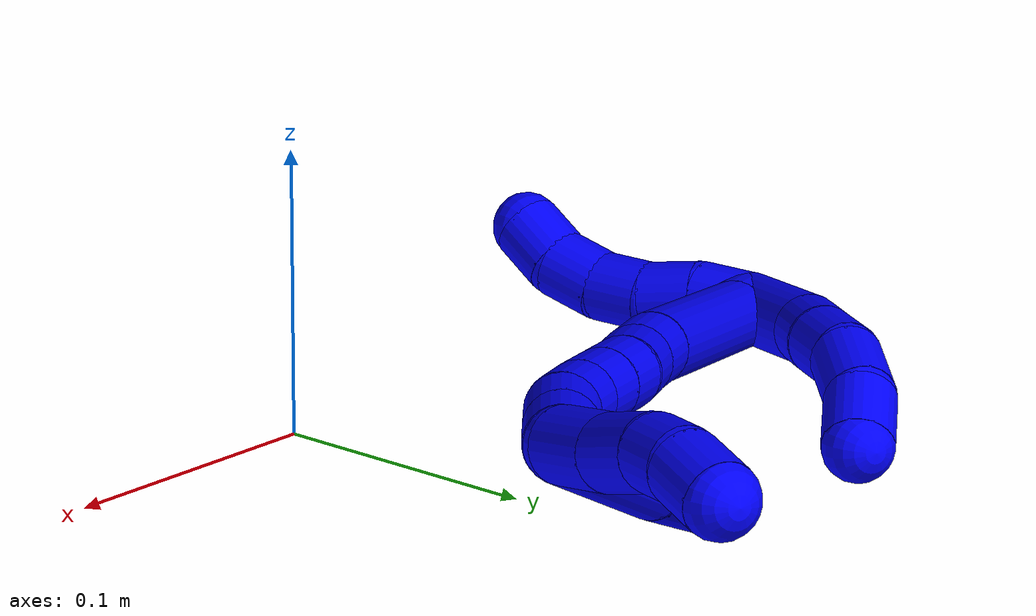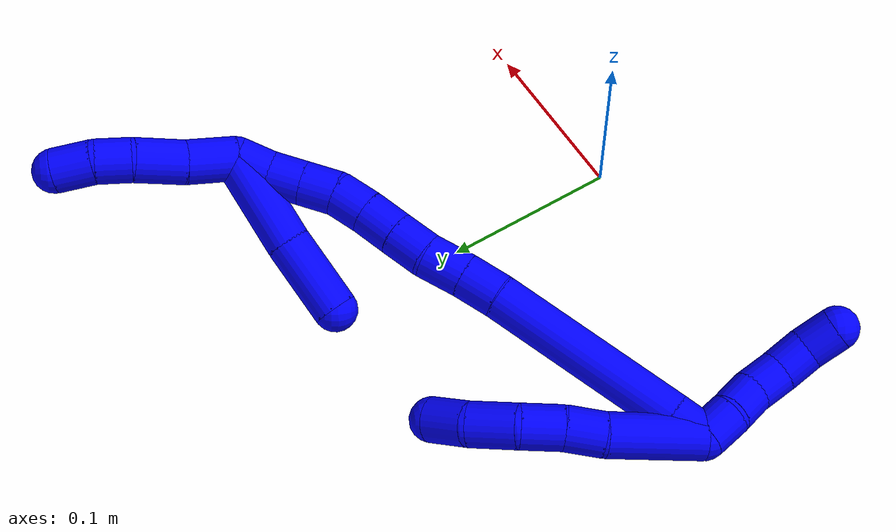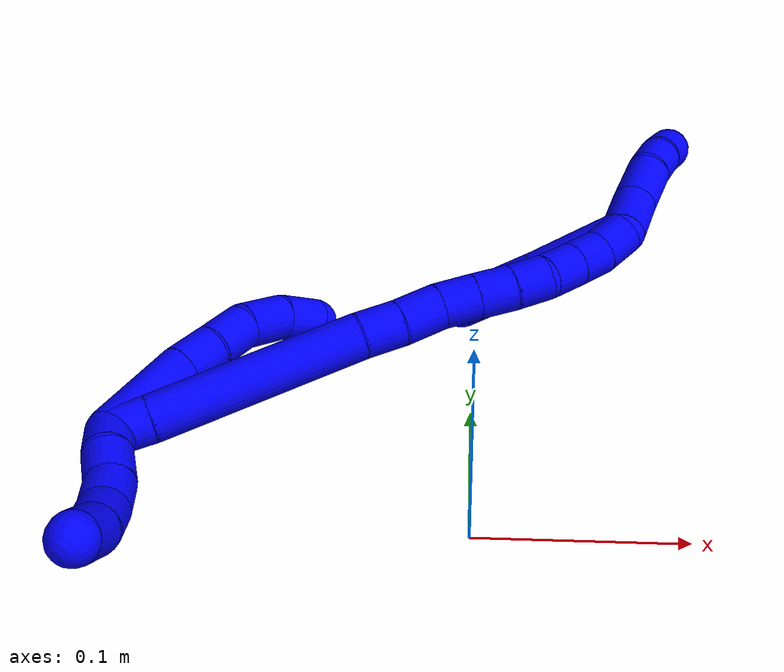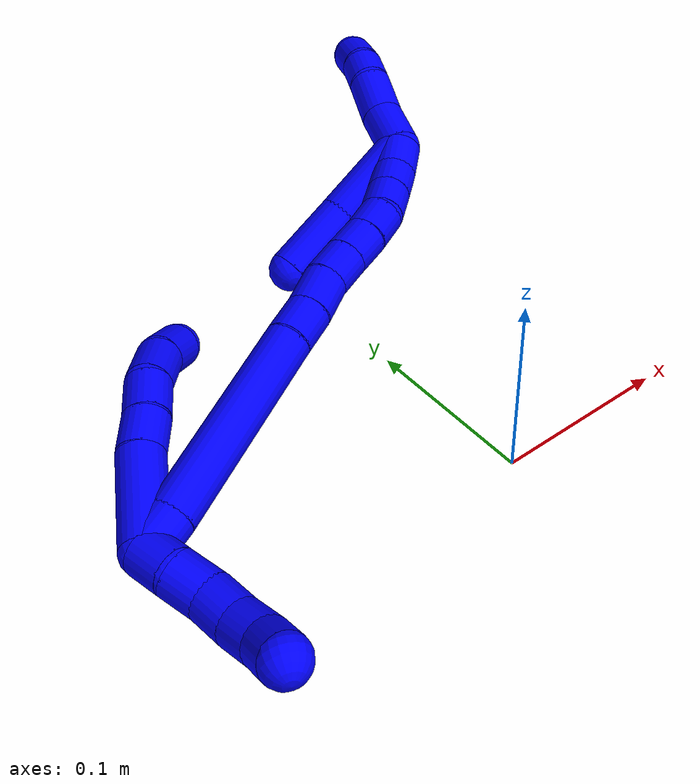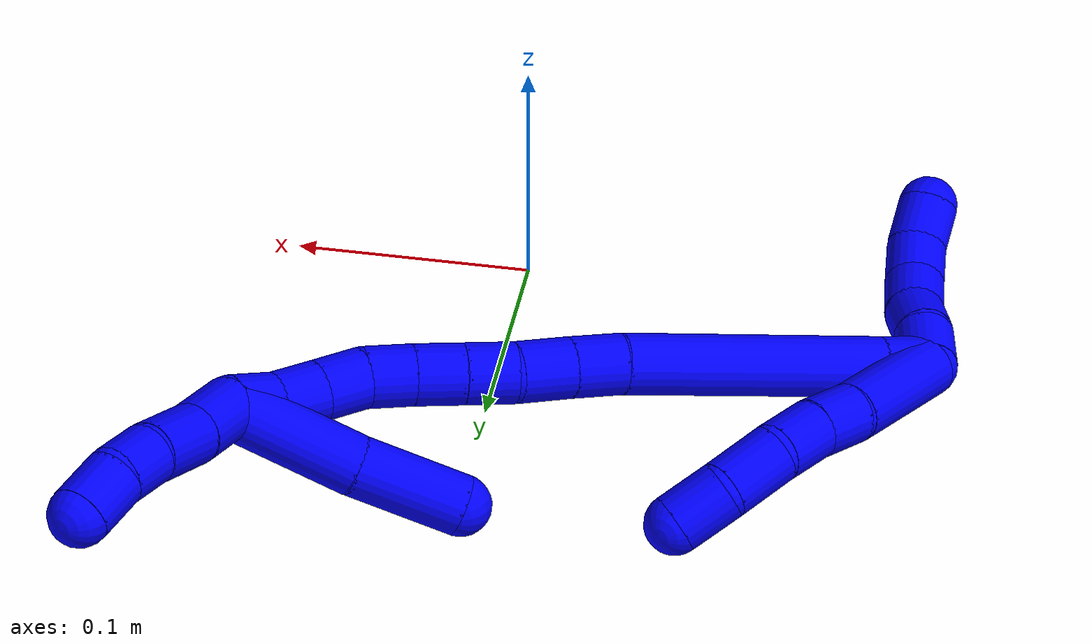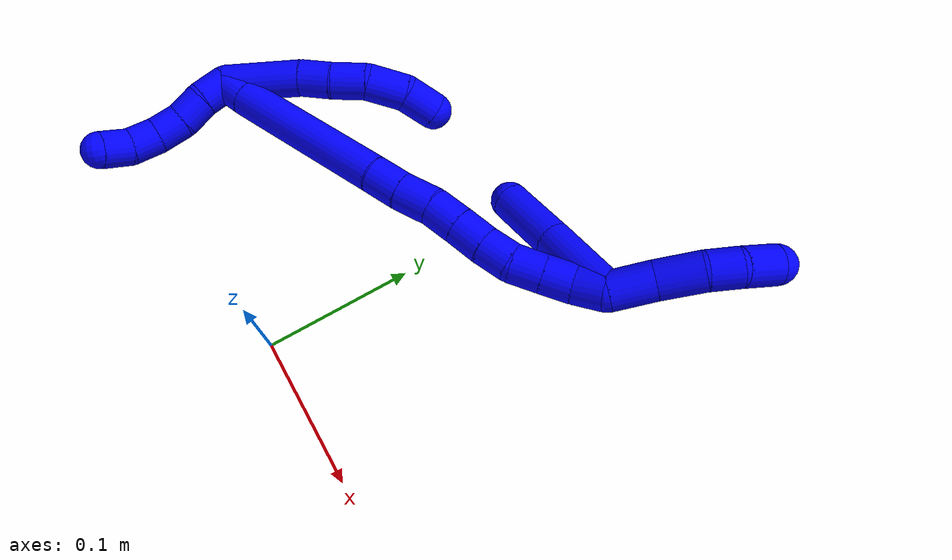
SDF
<sdf version="1.7">
 <world name="default">
  <model name="1">
   <static>0</static>
   <link name="1">
    <collision name="collision-cylinder-e_1_2_8">
     <pose>0.003148 0.001425 0.02672 -0.053294 0.117125 -0.003125</pose>
     <geometry><cylinder><radius>0.0125</radius><length>0.053885</length></cylinder></geometry>
     <surface>
      <friction><ode><mu>1.16</mu><mu2>1.16</mu2><slip1>0</slip1><slip2>0</slip2></ode></friction>
      <contact><ode><kp>1e+06</kp><kd>1</kd><max_vel>0</max_vel><min_depth>0.001</min_depth></ode></contact>
     </surface>
    </collision>
    <visual name="visual-cylinder-e_1_2_8">
     <pose>0.003148 0.001425 0.02672 -0.053294 0.117125 -0.003125</pose>
     <geometry><cylinder><radius>0.0125</radius><length>0.053885</length></cylinder></geometry>
     <material><ambient>0 0 1 1</ambient></material>
    </visual>
    <collision name="collision-cylinder-e_2_8_9">
     <pose>0.008727 0.004811 0.063961 -0.184227 0.223293 -0.020712</pose>
     <geometry><cylinder><radius>0.0125</radius><length>0.02195</length></cylinder></geometry>
     <surface>
      <friction><ode><mu>1.16</mu><mu2>1.16</mu2><slip1>0</slip1><slip2>0</slip2></ode></friction>
      <contact><ode><kp>1e+06</kp><kd>1</kd><max_vel>0</max_vel><min_depth>0.001</min_depth></ode></contact>
     </surface>
    </collision>
    <visual name="visual-cylinder-e_2_8_9">
     <pose>0.008727 0.004811 0.063961 -0.184227 0.223293 -0.020712</pose>
     <geometry><cylinder><radius>0.0125</radius><length>0.02195</length></cylinder></geometry>
     <material><ambient>0 0 1 1</ambient></material>
    </visual>
    <collision name="collision-cylinder-e_3_9_10">
     <pose>0.012284 0.00864 0.086108 -0.159356 0.095377 -0.007621</pose>
     <geometry><cylinder><radius>0.0125</radius><length>0.023657</length></cylinder></geometry>
     <surface>
      <friction><ode><mu>1.16</mu><mu2>1.16</mu2><slip1>0</slip1><slip2>0</slip2></ode></friction>
      <contact><ode><kp>1e+06</kp><kd>1</kd><max_vel>0</max_vel><min_depth>0.001</min_depth></ode></contact>
     </surface>
    </collision>
    <visual name="visual-cylinder-e_3_9_10">
     <pose>0.012284 0.00864 0.086108 -0.159356 0.095377 -0.007621</pose>
     <geometry><cylinder><radius>0.0125</radius><length>0.023657</length></cylinder></geometry>
     <material><ambient>0 0 1 1</ambient></material>
    </visual>
    <collision name="collision-cylinder-e_4_10_11">
     <pose>0.013537 0.016376 0.109936 -0.448162 0.009321 -0.002124</pose>
     <geometry><cylinder><radius>0.0125</radius><length>0.027081</length></cylinder></geometry>
     <surface>
      <friction><ode><mu>1.16</mu><mu2>1.16</mu2><slip1>0</slip1><slip2>0</slip2></ode></friction>
      <contact><ode><kp>1e+06</kp><kd>1</kd><max_vel>0</max_vel><min_depth>0.001</min_depth></ode></contact>
     </surface>
    </collision>
    <visual name="visual-cylinder-e_4_10_11">
     <pose>0.013537 0.016376 0.109936 -0.448162 0.009321 -0.002124</pose>
     <geometry><cylinder><radius>0.0125</radius><length>0.027081</length></cylinder></geometry>
     <material><ambient>0 0 1 1</ambient></material>
    </visual>
    <collision name="collision-cylinder-e_5_11_6">
     <pose>0.013499 0.030208 0.130725 -0.747908 -0.01397 0.005482</pose>
     <geometry><cylinder><radius>0.0125</radius><length>0.023428</length></cylinder></geometry>
     <surface>
      <friction><ode><mu>1.16</mu><mu2>1.16</mu2><slip1>0</slip1><slip2>0</slip2></ode></friction>
      <contact><ode><kp>1e+06</kp><kd>1</kd><max_vel>0</max_vel><min_depth>0.001</min_depth></ode></contact>
     </surface>
    </collision>
    <visual name="visual-cylinder-e_5_11_6">
     <pose>0.013499 0.030208 0.130725 -0.747908 -0.01397 0.005482</pose>
     <geometry><cylinder><radius>0.0125</radius><length>0.023428</length></cylinder></geometry>
     <material><ambient>0 0 1 1</ambient></material>
    </visual>
    <collision name="collision-cylinder-e_1_2_12">
     <pose>0.004757 0.002986 -0.008274 -2.79527 0.495711 -1.93201</pose>
     <geometry><cylinder><radius>0.0125</radius><length>0.02</length></cylinder></geometry>
     <surface>
      <friction><ode><mu>1.16</mu><mu2>1.16</mu2><slip1>0</slip1><slip2>0</slip2></ode></friction>
      <contact><ode><kp>1e+06</kp><kd>1</kd><max_vel>0</max_vel><min_depth>0.001</min_depth></ode></contact>
     </surface>
    </collision>
    <visual name="visual-cylinder-e_1_2_12">
     <pose>0.004757 0.002986 -0.008274 -2.79527 0.495711 -1.93201</pose>
     <geometry><cylinder><radius>0.0125</radius><length>0.02</length></cylinder></geometry>
     <material><ambient>0 0 1 1</ambient></material>
    </visual>
    <collision name="collision-cylinder-e_2_12_13">
     <pose>0.013411 0.010978 -0.024278 -2.56686 0.400429 -1.2034</pose>
     <geometry><cylinder><radius>0.0125</radius><length>0.02</length></cylinder></geometry>
     <surface>
      <friction><ode><mu>1.16</mu><mu2>1.16</mu2><slip1>0</slip1><slip2>0</slip2></ode></friction>
      <contact><ode><kp>1e+06</kp><kd>1</kd><max_vel>0</max_vel><min_depth>0.001</min_depth></ode></contact>
     </surface>
    </collision>
    <visual name="visual-cylinder-e_2_12_13">
     <pose>0.013411 0.010978 -0.024278 -2.56686 0.400429 -1.2034</pose>
     <geometry><cylinder><radius>0.0125</radius><length>0.02</length></cylinder></geometry>
     <material><ambient>0 0 1 1</ambient></material>
    </visual>
    <collision name="collision-cylinder-e_3_13_14">
     <pose>0.021385 0.018648 -0.040742 -2.84553 0.419729 -1.92</pose>
     <geometry><cylinder><radius>0.0125</radius><length>0.02</length></cylinder></geometry>
     <surface>
      <friction><ode><mu>1.16</mu><mu2>1.16</mu2><slip1>0</slip1><slip2>0</slip2></ode></friction>
      <contact><ode><kp>1e+06</kp><kd>1</kd><max_vel>0</max_vel><min_depth>0.001</min_depth></ode></contact>
     </surface>
    </collision>
    <visual name="visual-cylinder-e_3_13_14">
     <pose>0.021385 0.018648 -0.040742 -2.84553 0.419729 -1.92</pose>
     <geometry><cylinder><radius>0.0125</radius><length>0.02</length></cylinder></geometry>
     <material><ambient>0 0 1 1</ambient></material>
    </visual>
    <collision name="collision-cylinder-e_4_14_15">
     <pose>0.030934 0.022051 -0.057812 -3.05321 0.579337 -2.84702</pose>
     <geometry><cylinder><radius>0.0125</radius><length>0.02</length></cylinder></geometry>
     <surface>
      <friction><ode><mu>1.16</mu><mu2>1.16</mu2><slip1>0</slip1><slip2>0</slip2></ode></friction>
      <contact><ode><kp>1e+06</kp><kd>1</kd><max_vel>0</max_vel><min_depth>0.001</min_depth></ode></contact>
     </surface>
    </collision>
    <visual name="visual-cylinder-e_4_14_15">
     <pose>0.030934 0.022051 -0.057812 -3.05321 0.579337 -2.84702</pose>
     <geometry><cylinder><radius>0.0125</radius><length>0.02</length></cylinder></geometry>
     <material><ambient>0 0 1 1</ambient></material>
    </visual>
    <collision name="collision-cylinder-e_5_15_5">
     <pose>0.041958 0.020414 -0.07412 2.85195 0.588202 2.24408</pose>
     <geometry><cylinder><radius>0.0125</radius><length>0.02</length></cylinder></geometry>
     <surface>
      <friction><ode><mu>1.16</mu><mu2>1.16</mu2><slip1>0</slip1><slip2>0</slip2></ode></friction>
      <contact><ode><kp>1e+06</kp><kd>1</kd><max_vel>0</max_vel><min_depth>0.001</min_depth></ode></contact>
     </surface>
    </collision>
    <visual name="visual-cylinder-e_5_15_5">
     <pose>0.041958 0.020414 -0.07412 2.85195 0.588202 2.24408</pose>
     <geometry><cylinder><radius>0.0125</radius><length>0.02</length></cylinder></geometry>
     <material><ambient>0 0 1 1</ambient></material>
    </visual>
    <collision name="collision-cylinder-e_1_2_16">
     <pose>0.005508 0.004657 0.007107 -0.580066 0.575171 -0.176097</pose>
     <geometry><cylinder><radius>0.0125</radius><length>0.020252</length></cylinder></geometry>
     <surface>
      <friction><ode><mu>1.16</mu><mu2>1.16</mu2><slip1>0</slip1><slip2>0</slip2></ode></friction>
      <contact><ode><kp>1e+06</kp><kd>1</kd><max_vel>0</max_vel><min_depth>0.001</min_depth></ode></contact>
     </surface>
    </collision>
    <visual name="visual-cylinder-e_1_2_16">
     <pose>0.005508 0.004657 0.007107 -0.580066 0.575171 -0.176097</pose>
     <geometry><cylinder><radius>0.0125</radius><length>0.020252</length></cylinder></geometry>
     <material><ambient>0 0 1 1</ambient></material>
    </visual>
    <collision name="collision-cylinder-e_2_16_17">
     <pose>0.042328 0.031415 0.055324 -0.493284 0.590882 -0.152951</pose>
     <geometry><cylinder><radius>0.0125</radius><length>0.112407</length></cylinder></geometry>
     <surface>
      <friction><ode><mu>1.16</mu><mu2>1.16</mu2><slip1>0</slip1><slip2>0</slip2></ode></friction>
      <contact><ode><kp>1e+06</kp><kd>1</kd><max_vel>0</max_vel><min_depth>0.001</min_depth></ode></contact>
     </surface>
    </collision>
    <visual name="visual-cylinder-e_2_16_17">
     <pose>0.042328 0.031415 0.055324 -0.493284 0.590882 -0.152951</pose>
     <geometry><cylinder><radius>0.0125</radius><length>0.112407</length></cylinder></geometry>
     <material><ambient>0 0 1 1</ambient></material>
    </visual>
    <collision name="collision-cylinder-e_3_17_18">
     <pose>0.079104 0.058514 0.104692 -0.544284 0.515265 -0.146797</pose>
     <geometry><cylinder><radius>0.0125</radius><length>0.022185</length></cylinder></geometry>
     <surface>
      <friction><ode><mu>1.16</mu><mu2>1.16</mu2><slip1>0</slip1><slip2>0</slip2></ode></friction>
      <contact><ode><kp>1e+06</kp><kd>1</kd><max_vel>0</max_vel><min_depth>0.001</min_depth></ode></contact>
     </surface>
    </collision>
    <visual name="visual-cylinder-e_3_17_18">
     <pose>0.079104 0.058514 0.104692 -0.544284 0.515265 -0.146797</pose>
     <geometry><cylinder><radius>0.0125</radius><length>0.022185</length></cylinder></geometry>
     <material><ambient>0 0 1 1</ambient></material>
    </visual>
    <collision name="collision-cylinder-e_4_18_19">
     <pose>0.090094 0.06796 0.122376 -0.440804 0.487283 -0.11127</pose>
     <geometry><cylinder><radius>0.0125</radius><length>0.023593</length></cylinder></geometry>
     <surface>
      <friction><ode><mu>1.16</mu><mu2>1.16</mu2><slip1>0</slip1><slip2>0</slip2></ode></friction>
      <contact><ode><kp>1e+06</kp><kd>1</kd><max_vel>0</max_vel><min_depth>0.001</min_depth></ode></contact>
     </surface>
    </collision>
    <visual name="visual-cylinder-e_4_18_19">
     <pose>0.090094 0.06796 0.122376 -0.440804 0.487283 -0.11127</pose>
     <geometry><cylinder><radius>0.0125</radius><length>0.023593</length></cylinder></geometry>
     <material><ambient>0 0 1 1</ambient></material>
    </visual>
    <collision name="collision-cylinder-e_5_19_20">
     <pose>0.101216 0.077549 0.138971 -0.622301 0.565561 -0.18635</pose>
     <geometry><cylinder><radius>0.0125</radius><length>0.020896</length></cylinder></geometry>
     <surface>
      <friction><ode><mu>1.16</mu><mu2>1.16</mu2><slip1>0</slip1><slip2>0</slip2></ode></friction>
      <contact><ode><kp>1e+06</kp><kd>1</kd><max_vel>0</max_vel><min_depth>0.001</min_depth></ode></contact>
     </surface>
    </collision>
    <visual name="visual-cylinder-e_5_19_20">
     <pose>0.101216 0.077549 0.138971 -0.622301 0.565561 -0.18635</pose>
     <geometry><cylinder><radius>0.0125</radius><length>0.020896</length></cylinder></geometry>
     <material><ambient>0 0 1 1</ambient></material>
    </visual>
    <collision name="collision-cylinder-e_6_20_21">
     <pose>0.112361 0.087942 0.15306 -0.648966 0.568154 -0.195796</pose>
     <geometry><cylinder><radius>0.0125</radius><length>0.020615</length></cylinder></geometry>
     <surface>
      <friction><ode><mu>1.16</mu><mu2>1.16</mu2><slip1>0</slip1><slip2>0</slip2></ode></friction>
      <contact><ode><kp>1e+06</kp><kd>1</kd><max_vel>0</max_vel><min_depth>0.001</min_depth></ode></contact>
     </surface>
    </collision>
    <visual name="visual-cylinder-e_6_20_21">
     <pose>0.112361 0.087942 0.15306 -0.648966 0.568154 -0.195796</pose>
     <geometry><cylinder><radius>0.0125</radius><length>0.020615</length></cylinder></geometry>
     <material><ambient>0 0 1 1</ambient></material>
    </visual>
    <collision name="collision-cylinder-e_7_21_22">
     <pose>0.122988 0.097805 0.167261 -0.564866 0.53268 -0.158011</pose>
     <geometry><cylinder><radius>0.0125</radius><length>0.020006</length></cylinder></geometry>
     <surface>
      <friction><ode><mu>1.16</mu><mu2>1.16</mu2><slip1>0</slip1><slip2>0</slip2></ode></friction>
      <contact><ode><kp>1e+06</kp><kd>1</kd><max_vel>0</max_vel><min_depth>0.001</min_depth></ode></contact>
     </surface>
    </collision>
    <visual name="visual-cylinder-e_7_21_22">
     <pose>0.122988 0.097805 0.167261 -0.564866 0.53268 -0.158011</pose>
     <geometry><cylinder><radius>0.0125</radius><length>0.020006</length></cylinder></geometry>
     <material><ambient>0 0 1 1</ambient></material>
    </visual>
    <collision name="collision-cylinder-e_8_22_23">
     <pose>0.131054 0.106016 0.183383 -0.386374 0.303125 -0.05974</pose>
     <geometry><cylinder><radius>0.0125</radius><length>0.020006</length></cylinder></geometry>
     <surface>
      <friction><ode><mu>1.16</mu><mu2>1.16</mu2><slip1>0</slip1><slip2>0</slip2></ode></friction>
      <contact><ode><kp>1e+06</kp><kd>1</kd><max_vel>0</max_vel><min_depth>0.001</min_depth></ode></contact>
     </surface>
    </collision>
    <visual name="visual-cylinder-e_8_22_23">
     <pose>0.131054 0.106016 0.183383 -0.386374 0.303125 -0.05974</pose>
     <geometry><cylinder><radius>0.0125</radius><length>0.020006</length></cylinder></geometry>
     <material><ambient>0 0 1 1</ambient></material>
    </visual>
    <collision name="collision-cylinder-e_9_23_24">
     <pose>0.137072 0.113048 0.20112 -0.368548 0.307921 -0.057835</pose>
     <geometry><cylinder><radius>0.0125</radius><length>0.020009</length></cylinder></geometry>
     <surface>
      <friction><ode><mu>1.16</mu><mu2>1.16</mu2><slip1>0</slip1><slip2>0</slip2></ode></friction>
      <contact><ode><kp>1e+06</kp><kd>1</kd><max_vel>0</max_vel><min_depth>0.001</min_depth></ode></contact>
     </surface>
    </collision>
    <visual name="visual-cylinder-e_9_23_24">
     <pose>0.137072 0.113048 0.20112 -0.368548 0.307921 -0.057835</pose>
     <geometry><cylinder><radius>0.0125</radius><length>0.020009</length></cylinder></geometry>
     <material><ambient>0 0 1 1</ambient></material>
    </visual>
    <collision name="collision-cylinder-e_10_24_1">
     <pose>0.14466 0.117897 0.218819 -0.159234 0.47225 -0.03839</pose>
     <geometry><cylinder><radius>0.0125</radius><length>0.020029</length></cylinder></geometry>
     <surface>
      <friction><ode><mu>1.16</mu><mu2>1.16</mu2><slip1>0</slip1><slip2>0</slip2></ode></friction>
      <contact><ode><kp>1e+06</kp><kd>1</kd><max_vel>0</max_vel><min_depth>0.001</min_depth></ode></contact>
     </surface>
    </collision>
    <visual name="visual-cylinder-e_10_24_1">
     <pose>0.14466 0.117897 0.218819 -0.159234 0.47225 -0.03839</pose>
     <geometry><cylinder><radius>0.0125</radius><length>0.020029</length></cylinder></geometry>
     <material><ambient>0 0 1 1</ambient></material>
    </visual>
    <collision name="collision-cylinder-e_1_1_25">
     <pose>0.125849 0.111799 0.215485 2.58748 -1.02235 -2.20316</pose>
     <geometry><cylinder><radius>0.0125</radius><length>0.054765</length></cylinder></geometry>
     <surface>
      <friction><ode><mu>1.16</mu><mu2>1.16</mu2><slip1>0</slip1><slip2>0</slip2></ode></friction>
      <contact><ode><kp>1e+06</kp><kd>1</kd><max_vel>0</max_vel><min_depth>0.001</min_depth></ode></contact>
     </surface>
    </collision>
    <visual name="visual-cylinder-e_1_1_25">
     <pose>0.125849 0.111799 0.215485 2.58748 -1.02235 -2.20316</pose>
     <geometry><cylinder><radius>0.0125</radius><length>0.054765</length></cylinder></geometry>
     <material><ambient>0 0 1 1</ambient></material>
    </visual>
    <collision name="collision-cylinder-e_2_25_4">
     <pose>0.084132 0.09704 0.192286 2.56149 -0.94643 -2.08606</pose>
     <geometry><cylinder><radius>0.0125</radius><length>0.045235</length></cylinder></geometry>
     <surface>
      <friction><ode><mu>1.16</mu><mu2>1.16</mu2><slip1>0</slip1><slip2>0</slip2></ode></friction>
      <contact><ode><kp>1e+06</kp><kd>1</kd><max_vel>0</max_vel><min_depth>0.001</min_depth></ode></contact>
     </surface>
    </collision>
    <visual name="visual-cylinder-e_2_25_4">
     <pose>0.084132 0.09704 0.192286 2.56149 -0.94643 -2.08606</pose>
     <geometry><cylinder><radius>0.0125</radius><length>0.045235</length></cylinder></geometry>
     <material><ambient>0 0 1 1</ambient></material>
    </visual>
    <collision name="collision-cylinder-e_1_1_26">
     <pose>0.149543 0.117586 0.241758 0.121471 0.023037 0.001401</pose>
     <geometry><cylinder><radius>0.0125</radius><length>0.028484</length></cylinder></geometry>
     <surface>
      <friction><ode><mu>1.16</mu><mu2>1.16</mu2><slip1>0</slip1><slip2>0</slip2></ode></friction>
      <contact><ode><kp>1e+06</kp><kd>1</kd><max_vel>0</max_vel><min_depth>0.001</min_depth></ode></contact>
     </surface>
    </collision>
    <visual name="visual-cylinder-e_1_1_26">
     <pose>0.149543 0.117586 0.241758 0.121471 0.023037 0.001401</pose>
     <geometry><cylinder><radius>0.0125</radius><length>0.028484</length></cylinder></geometry>
     <material><ambient>0 0 1 1</ambient></material>
    </visual>
    <collision name="collision-cylinder-e_2_26_27">
     <pose>0.151985 0.113769 0.270142 0.145736 0.14571 0.010655</pose>
     <geometry><cylinder><radius>0.0125</radius><length>0.029116</length></cylinder></geometry>
     <surface>
      <friction><ode><mu>1.16</mu><mu2>1.16</mu2><slip1>0</slip1><slip2>0</slip2></ode></friction>
      <contact><ode><kp>1e+06</kp><kd>1</kd><max_vel>0</max_vel><min_depth>0.001</min_depth></ode></contact>
     </surface>
    </collision>
    <visual name="visual-cylinder-e_2_26_27">
     <pose>0.151985 0.113769 0.270142 0.145736 0.14571 0.010655</pose>
     <geometry><cylinder><radius>0.0125</radius><length>0.029116</length></cylinder></geometry>
     <material><ambient>0 0 1 1</ambient></material>
    </visual>
    <collision name="collision-cylinder-e_3_27_28">
     <pose>0.154355 0.111989 0.294437 -0.031012 0.025522 -0.000396</pose>
     <geometry><cylinder><radius>0.0125</radius><length>0.020105</length></cylinder></geometry>
     <surface>
      <friction><ode><mu>1.16</mu><mu2>1.16</mu2><slip1>0</slip1><slip2>0</slip2></ode></friction>
      <contact><ode><kp>1e+06</kp><kd>1</kd><max_vel>0</max_vel><min_depth>0.001</min_depth></ode></contact>
     </surface>
    </collision>
    <visual name="visual-cylinder-e_3_27_28">
     <pose>0.154355 0.111989 0.294437 -0.031012 0.025522 -0.000396</pose>
     <geometry><cylinder><radius>0.0125</radius><length>0.020105</length></cylinder></geometry>
     <material><ambient>0 0 1 1</ambient></material>
    </visual>
    <collision name="collision-cylinder-e_4_28_3">
     <pose>0.152674 0.114268 0.315282 -0.180234 -0.174676 0.015824</pose>
     <geometry><cylinder><radius>0.0125</radius><length>0.022295</length></cylinder></geometry>
     <surface>
      <friction><ode><mu>1.16</mu><mu2>1.16</mu2><slip1>0</slip1><slip2>0</slip2></ode></friction>
      <contact><ode><kp>1e+06</kp><kd>1</kd><max_vel>0</max_vel><min_depth>0.001</min_depth></ode></contact>
     </surface>
    </collision>
    <visual name="visual-cylinder-e_4_28_3">
     <pose>0.152674 0.114268 0.315282 -0.180234 -0.174676 0.015824</pose>
     <geometry><cylinder><radius>0.0125</radius><length>0.022295</length></cylinder></geometry>
     <material><ambient>0 0 1 1</ambient></material>
    </visual>
    <collision name="collision-sphere-3">
     <pose>0.150737 0.116236 0.326083 0 -0 0</pose>
     <geometry><sphere><radius>0.0125</radius></sphere></geometry>
     <surface>
      <friction><ode><mu>1.16</mu><mu2>1.16</mu2><slip1>0</slip1><slip2>0</slip2></ode></friction>
      <contact><ode><kp>1e+06</kp><kd>1</kd><max_vel>0</max_vel><min_depth>0.001</min_depth></ode></contact>
     </surface>
    </collision>
    <visual name="visual-sphere-3">
     <pose>0.150737 0.116236 0.326083 0 -0 0</pose>
     <geometry><sphere><radius>0.0125</radius></sphere></geometry>
     <material><ambient>0 0 1 1</ambient></material>
    </visual>
    <collision name="collision-sphere-28">
     <pose>0.154612 0.112301 0.304482 0 -0 0</pose>
     <geometry><sphere><radius>0.0125</radius></sphere></geometry>
     <surface>
      <friction><ode><mu>1.16</mu><mu2>1.16</mu2><slip1>0</slip1><slip2>0</slip2></ode></friction>
      <contact><ode><kp>1e+06</kp><kd>1</kd><max_vel>0</max_vel><min_depth>0.001</min_depth></ode></contact>
     </surface>
    </collision>
    <visual name="visual-sphere-28">
     <pose>0.154612 0.112301 0.304482 0 -0 0</pose>
     <geometry><sphere><radius>0.0125</radius></sphere></geometry>
     <material><ambient>0 0 1 1</ambient></material>
    </visual>
    <collision name="collision-sphere-27">
     <pose>0.154099 0.111677 0.284393 0 -0 0</pose>
     <geometry><sphere><radius>0.0125</radius></sphere></geometry>
     <surface>
      <friction><ode><mu>1.16</mu><mu2>1.16</mu2><slip1>0</slip1><slip2>0</slip2></ode></friction>
      <contact><ode><kp>1e+06</kp><kd>1</kd><max_vel>0</max_vel><min_depth>0.001</min_depth></ode></contact>
     </surface>
    </collision>
    <visual name="visual-sphere-27">
     <pose>0.154099 0.111677 0.284393 0 -0 0</pose>
     <geometry><sphere><radius>0.0125</radius></sphere></geometry>
     <material><ambient>0 0 1 1</ambient></material>
    </visual>
    <collision name="collision-sphere-26">
     <pose>0.149871 0.115861 0.255891 0 -0 0</pose>
     <geometry><sphere><radius>0.0125</radius></sphere></geometry>
     <surface>
      <friction><ode><mu>1.16</mu><mu2>1.16</mu2><slip1>0</slip1><slip2>0</slip2></ode></friction>
      <contact><ode><kp>1e+06</kp><kd>1</kd><max_vel>0</max_vel><min_depth>0.001</min_depth></ode></contact>
     </surface>
    </collision>
    <visual name="visual-sphere-26">
     <pose>0.149871 0.115861 0.255891 0 -0 0</pose>
     <geometry><sphere><radius>0.0125</radius></sphere></geometry>
     <material><ambient>0 0 1 1</ambient></material>
    </visual>
    <collision name="collision-sphere-4">
     <pose>0.065782 0.089793 0.181227 0 -0 0</pose>
     <geometry><sphere><radius>0.0125</radius></sphere></geometry>
     <surface>
      <friction><ode><mu>1.16</mu><mu2>1.16</mu2><slip1>0</slip1><slip2>0</slip2></ode></friction>
      <contact><ode><kp>1e+06</kp><kd>1</kd><max_vel>0</max_vel><min_depth>0.001</min_depth></ode></contact>
     </surface>
    </collision>
    <visual name="visual-sphere-4">
     <pose>0.065782 0.089793 0.181227 0 -0 0</pose>
     <geometry><sphere><radius>0.0125</radius></sphere></geometry>
     <material><ambient>0 0 1 1</ambient></material>
    </visual>
    <collision name="collision-sphere-25">
     <pose>0.102482 0.104287 0.203345 0 -0 0</pose>
     <geometry><sphere><radius>0.0125</radius></sphere></geometry>
     <surface>
      <friction><ode><mu>1.16</mu><mu2>1.16</mu2><slip1>0</slip1><slip2>0</slip2></ode></friction>
      <contact><ode><kp>1e+06</kp><kd>1</kd><max_vel>0</max_vel><min_depth>0.001</min_depth></ode></contact>
     </surface>
    </collision>
    <visual name="visual-sphere-25">
     <pose>0.102482 0.104287 0.203345 0 -0 0</pose>
     <geometry><sphere><radius>0.0125</radius></sphere></geometry>
     <material><ambient>0 0 1 1</ambient></material>
    </visual>
    <collision name="collision-sphere-1">
     <pose>0.149215 0.119311 0.227625 0 -0 0</pose>
     <geometry><sphere><radius>0.0125</radius></sphere></geometry>
     <surface>
      <friction><ode><mu>1.16</mu><mu2>1.16</mu2><slip1>0</slip1><slip2>0</slip2></ode></friction>
      <contact><ode><kp>1e+06</kp><kd>1</kd><max_vel>0</max_vel><min_depth>0.001</min_depth></ode></contact>
     </surface>
    </collision>
    <visual name="visual-sphere-1">
     <pose>0.149215 0.119311 0.227625 0 -0 0</pose>
     <geometry><sphere><radius>0.0125</radius></sphere></geometry>
     <material><ambient>0 0 1 1</ambient></material>
    </visual>
    <collision name="collision-sphere-24">
     <pose>0.140104 0.116483 0.210013 0 -0 0</pose>
     <geometry><sphere><radius>0.0125</radius></sphere></geometry>
     <surface>
      <friction><ode><mu>1.16</mu><mu2>1.16</mu2><slip1>0</slip1><slip2>0</slip2></ode></friction>
      <contact><ode><kp>1e+06</kp><kd>1</kd><max_vel>0</max_vel><min_depth>0.001</min_depth></ode></contact>
     </surface>
    </collision>
    <visual name="visual-sphere-24">
     <pose>0.140104 0.116483 0.210013 0 -0 0</pose>
     <geometry><sphere><radius>0.0125</radius></sphere></geometry>
     <material><ambient>0 0 1 1</ambient></material>
    </visual>
    <collision name="collision-sphere-23">
     <pose>0.13404 0.109614 0.192226 0 -0 0</pose>
     <geometry><sphere><radius>0.0125</radius></sphere></geometry>
     <surface>
      <friction><ode><mu>1.16</mu><mu2>1.16</mu2><slip1>0</slip1><slip2>0</slip2></ode></friction>
      <contact><ode><kp>1e+06</kp><kd>1</kd><max_vel>0</max_vel><min_depth>0.001</min_depth></ode></contact>
     </surface>
    </collision>
    <visual name="visual-sphere-23">
     <pose>0.13404 0.109614 0.192226 0 -0 0</pose>
     <geometry><sphere><radius>0.0125</radius></sphere></geometry>
     <material><ambient>0 0 1 1</ambient></material>
    </visual>
    <collision name="collision-sphere-22">
     <pose>0.128068 0.102418 0.174539 0 -0 0</pose>
     <geometry><sphere><radius>0.0125</radius></sphere></geometry>
     <surface>
      <friction><ode><mu>1.16</mu><mu2>1.16</mu2><slip1>0</slip1><slip2>0</slip2></ode></friction>
      <contact><ode><kp>1e+06</kp><kd>1</kd><max_vel>0</max_vel><min_depth>0.001</min_depth></ode></contact>
     </surface>
    </collision>
    <visual name="visual-sphere-22">
     <pose>0.128068 0.102418 0.174539 0 -0 0</pose>
     <geometry><sphere><radius>0.0125</radius></sphere></geometry>
     <material><ambient>0 0 1 1</ambient></material>
    </visual>
    <collision name="collision-sphere-21">
     <pose>0.117908 0.093193 0.159982 0 -0 0</pose>
     <geometry><sphere><radius>0.0125</radius></sphere></geometry>
     <surface>
      <friction><ode><mu>1.16</mu><mu2>1.16</mu2><slip1>0</slip1><slip2>0</slip2></ode></friction>
      <contact><ode><kp>1e+06</kp><kd>1</kd><max_vel>0</max_vel><min_depth>0.001</min_depth></ode></contact>
     </surface>
    </collision>
    <visual name="visual-sphere-21">
     <pose>0.117908 0.093193 0.159982 0 -0 0</pose>
     <geometry><sphere><radius>0.0125</radius></sphere></geometry>
     <material><ambient>0 0 1 1</ambient></material>
    </visual>
    <collision name="collision-sphere-6">
     <pose>0.013336 0.038174 0.139312 0 -0 0</pose>
     <geometry><sphere><radius>0.0125</radius></sphere></geometry>
     <surface>
      <friction><ode><mu>1.16</mu><mu2>1.16</mu2><slip1>0</slip1><slip2>0</slip2></ode></friction>
      <contact><ode><kp>1e+06</kp><kd>1</kd><max_vel>0</max_vel><min_depth>0.001</min_depth></ode></contact>
     </surface>
    </collision>
    <visual name="visual-sphere-6">
     <pose>0.013336 0.038174 0.139312 0 -0 0</pose>
     <geometry><sphere><radius>0.0125</radius></sphere></geometry>
     <material><ambient>0 0 1 1</ambient></material>
    </visual>
    <collision name="collision-sphere-11">
     <pose>0.013663 0.022242 0.122139 0 -0 0</pose>
     <geometry><sphere><radius>0.0125</radius></sphere></geometry>
     <surface>
      <friction><ode><mu>1.16</mu><mu2>1.16</mu2><slip1>0</slip1><slip2>0</slip2></ode></friction>
      <contact><ode><kp>1e+06</kp><kd>1</kd><max_vel>0</max_vel><min_depth>0.001</min_depth></ode></contact>
     </surface>
    </collision>
    <visual name="visual-sphere-11">
     <pose>0.013663 0.022242 0.122139 0 -0 0</pose>
     <geometry><sphere><radius>0.0125</radius></sphere></geometry>
     <material><ambient>0 0 1 1</ambient></material>
    </visual>
    <collision name="collision-sphere-10">
     <pose>0.01341 0.010509 0.097733 0 -0 0</pose>
     <geometry><sphere><radius>0.0125</radius></sphere></geometry>
     <surface>
      <friction><ode><mu>1.16</mu><mu2>1.16</mu2><slip1>0</slip1><slip2>0</slip2></ode></friction>
      <contact><ode><kp>1e+06</kp><kd>1</kd><max_vel>0</max_vel><min_depth>0.001</min_depth></ode></contact>
     </surface>
    </collision>
    <visual name="visual-sphere-10">
     <pose>0.01341 0.010509 0.097733 0 -0 0</pose>
     <geometry><sphere><radius>0.0125</radius></sphere></geometry>
     <material><ambient>0 0 1 1</ambient></material>
    </visual>
    <collision name="collision-sphere-9">
     <pose>0.011157 0.006772 0.074482 0 -0 0</pose>
     <geometry><sphere><radius>0.0125</radius></sphere></geometry>
     <surface>
      <friction><ode><mu>1.16</mu><mu2>1.16</mu2><slip1>0</slip1><slip2>0</slip2></ode></friction>
      <contact><ode><kp>1e+06</kp><kd>1</kd><max_vel>0</max_vel><min_depth>0.001</min_depth></ode></contact>
     </surface>
    </collision>
    <visual name="visual-sphere-9">
     <pose>0.011157 0.006772 0.074482 0 -0 0</pose>
     <geometry><sphere><radius>0.0125</radius></sphere></geometry>
     <material><ambient>0 0 1 1</ambient></material>
    </visual>
    <collision name="collision-sphere-2">
     <geometry><sphere><radius>0.0125</radius></sphere></geometry>
     <surface>
      <friction><ode><mu>1.16</mu><mu2>1.16</mu2><slip1>0</slip1><slip2>0</slip2></ode></friction>
      <contact><ode><kp>1e+06</kp><kd>1</kd><max_vel>0</max_vel><min_depth>0.001</min_depth></ode></contact>
     </surface>
    </collision>
    <visual name="visual-sphere-2">
     <geometry><sphere><radius>0.0125</radius></sphere></geometry>
     <material><ambient>0 0 1 1</ambient></material>
    </visual>
    <collision name="collision-sphere-19">
     <pose>0.095617 0.072407 0.131803 0 -0 0</pose>
     <geometry><sphere><radius>0.0125</radius></sphere></geometry>
     <surface>
      <friction><ode><mu>1.16</mu><mu2>1.16</mu2><slip1>0</slip1><slip2>0</slip2></ode></friction>
      <contact><ode><kp>1e+06</kp><kd>1</kd><max_vel>0</max_vel><min_depth>0.001</min_depth></ode></contact>
     </surface>
    </collision>
    <visual name="visual-sphere-19">
     <pose>0.095617 0.072407 0.131803 0 -0 0</pose>
     <geometry><sphere><radius>0.0125</radius></sphere></geometry>
     <material><ambient>0 0 1 1</ambient></material>
    </visual>
    <collision name="collision-sphere-8">
     <pose>0.006297 0.002851 0.05344 0 -0 0</pose>
     <geometry><sphere><radius>0.0125</radius></sphere></geometry>
     <surface>
      <friction><ode><mu>1.16</mu><mu2>1.16</mu2><slip1>0</slip1><slip2>0</slip2></ode></friction>
      <contact><ode><kp>1e+06</kp><kd>1</kd><max_vel>0</max_vel><min_depth>0.001</min_depth></ode></contact>
     </surface>
    </collision>
    <visual name="visual-sphere-8">
     <pose>0.006297 0.002851 0.05344 0 -0 0</pose>
     <geometry><sphere><radius>0.0125</radius></sphere></geometry>
     <material><ambient>0 0 1 1</ambient></material>
    </visual>
    <collision name="collision-sphere-12">
     <pose>0.009513 0.005972 -0.016548 0 -0 0</pose>
     <geometry><sphere><radius>0.0125</radius></sphere></geometry>
     <surface>
      <friction><ode><mu>1.16</mu><mu2>1.16</mu2><slip1>0</slip1><slip2>0</slip2></ode></friction>
      <contact><ode><kp>1e+06</kp><kd>1</kd><max_vel>0</max_vel><min_depth>0.001</min_depth></ode></contact>
     </surface>
    </collision>
    <visual name="visual-sphere-12">
     <pose>0.009513 0.005972 -0.016548 0 -0 0</pose>
     <geometry><sphere><radius>0.0125</radius></sphere></geometry>
     <material><ambient>0 0 1 1</ambient></material>
    </visual>
    <collision name="collision-sphere-13">
     <pose>0.017309 0.015984 -0.032007 0 -0 0</pose>
     <geometry><sphere><radius>0.0125</radius></sphere></geometry>
     <surface>
      <friction><ode><mu>1.16</mu><mu2>1.16</mu2><slip1>0</slip1><slip2>0</slip2></ode></friction>
      <contact><ode><kp>1e+06</kp><kd>1</kd><max_vel>0</max_vel><min_depth>0.001</min_depth></ode></contact>
     </surface>
    </collision>
    <visual name="visual-sphere-13">
     <pose>0.017309 0.015984 -0.032007 0 -0 0</pose>
     <geometry><sphere><radius>0.0125</radius></sphere></geometry>
     <material><ambient>0 0 1 1</ambient></material>
    </visual>
    <collision name="collision-sphere-14">
     <pose>0.02546 0.021312 -0.049476 0 -0 0</pose>
     <geometry><sphere><radius>0.0125</radius></sphere></geometry>
     <surface>
      <friction><ode><mu>1.16</mu><mu2>1.16</mu2><slip1>0</slip1><slip2>0</slip2></ode></friction>
      <contact><ode><kp>1e+06</kp><kd>1</kd><max_vel>0</max_vel><min_depth>0.001</min_depth></ode></contact>
     </surface>
    </collision>
    <visual name="visual-sphere-14">
     <pose>0.02546 0.021312 -0.049476 0 -0 0</pose>
     <geometry><sphere><radius>0.0125</radius></sphere></geometry>
     <material><ambient>0 0 1 1</ambient></material>
    </visual>
    <collision name="collision-sphere-15">
     <pose>0.036409 0.02279 -0.066147 0 -0 0</pose>
     <geometry><sphere><radius>0.0125</radius></sphere></geometry>
     <surface>
      <friction><ode><mu>1.16</mu><mu2>1.16</mu2><slip1>0</slip1><slip2>0</slip2></ode></friction>
      <contact><ode><kp>1e+06</kp><kd>1</kd><max_vel>0</max_vel><min_depth>0.001</min_depth></ode></contact>
     </surface>
    </collision>
    <visual name="visual-sphere-15">
     <pose>0.036409 0.02279 -0.066147 0 -0 0</pose>
     <geometry><sphere><radius>0.0125</radius></sphere></geometry>
     <material><ambient>0 0 1 1</ambient></material>
    </visual>
    <collision name="collision-sphere-5">
     <pose>0.047506 0.018037 -0.082093 0 -0 0</pose>
     <geometry><sphere><radius>0.0125</radius></sphere></geometry>
     <surface>
      <friction><ode><mu>1.16</mu><mu2>1.16</mu2><slip1>0</slip1><slip2>0</slip2></ode></friction>
      <contact><ode><kp>1e+06</kp><kd>1</kd><max_vel>0</max_vel><min_depth>0.001</min_depth></ode></contact>
     </surface>
    </collision>
    <visual name="visual-sphere-5">
     <pose>0.047506 0.018037 -0.082093 0 -0 0</pose>
     <geometry><sphere><radius>0.0125</radius></sphere></geometry>
     <material><ambient>0 0 1 1</ambient></material>
    </visual>
    <collision name="collision-sphere-16">
     <pose>0.011017 0.009314 0.014214 0 -0 0</pose>
     <geometry><sphere><radius>0.0125</radius></sphere></geometry>
     <surface>
      <friction><ode><mu>1.16</mu><mu2>1.16</mu2><slip1>0</slip1><slip2>0</slip2></ode></friction>
      <contact><ode><kp>1e+06</kp><kd>1</kd><max_vel>0</max_vel><min_depth>0.001</min_depth></ode></contact>
     </surface>
    </collision>
    <visual name="visual-sphere-16">
     <pose>0.011017 0.009314 0.014214 0 -0 0</pose>
     <geometry><sphere><radius>0.0125</radius></sphere></geometry>
     <material><ambient>0 0 1 1</ambient></material>
    </visual>
    <collision name="collision-sphere-17">
     <pose>0.073638 0.053517 0.096434 0 -0 0</pose>
     <geometry><sphere><radius>0.0125</radius></sphere></geometry>
     <surface>
      <friction><ode><mu>1.16</mu><mu2>1.16</mu2><slip1>0</slip1><slip2>0</slip2></ode></friction>
      <contact><ode><kp>1e+06</kp><kd>1</kd><max_vel>0</max_vel><min_depth>0.001</min_depth></ode></contact>
     </surface>
    </collision>
    <visual name="visual-sphere-17">
     <pose>0.073638 0.053517 0.096434 0 -0 0</pose>
     <geometry><sphere><radius>0.0125</radius></sphere></geometry>
     <material><ambient>0 0 1 1</ambient></material>
    </visual>
    <collision name="collision-sphere-18">
     <pose>0.08457 0.063512 0.112949 0 -0 0</pose>
     <geometry><sphere><radius>0.0125</radius></sphere></geometry>
     <surface>
      <friction><ode><mu>1.16</mu><mu2>1.16</mu2><slip1>0</slip1><slip2>0</slip2></ode></friction>
      <contact><ode><kp>1e+06</kp><kd>1</kd><max_vel>0</max_vel><min_depth>0.001</min_depth></ode></contact>
     </surface>
    </collision>
    <visual name="visual-sphere-18">
     <pose>0.08457 0.063512 0.112949 0 -0 0</pose>
     <geometry><sphere><radius>0.0125</radius></sphere></geometry>
     <material><ambient>0 0 1 1</ambient></material>
    </visual>
    <collision name="collision-sphere-20">
     <pose>0.106815 0.082691 0.146138 0 -0 0</pose>
     <geometry><sphere><radius>0.0125</radius></sphere></geometry>
     <surface>
      <friction><ode><mu>1.16</mu><mu2>1.16</mu2><slip1>0</slip1><slip2>0</slip2></ode></friction>
      <contact><ode><kp>1e+06</kp><kd>1</kd><max_vel>0</max_vel><min_depth>0.001</min_depth></ode></contact>
     </surface>
    </collision>
    <visual name="visual-sphere-20">
     <pose>0.106815 0.082691 0.146138 0 -0 0</pose>
     <geometry><sphere><radius>0.0125</radius></sphere></geometry>
     <material><ambient>0 0 1 1</ambient></material>
    </visual>
    <inertial>
     <pose>0.07117 0.058233 0.117426 0 -0 0</pose>
     <mass>0.75</mass>
     <inertia>
      <ixx>0.000114</ixx>
      <ixy>0</ixy>
      <ixz>0</ixz>
      <iyy>0.000161</iyy>
      <iyz>0</iyz>
      <izz>-8.5e-05</izz>
     </inertia>
    </inertial>
   </link>
   <pose>-0.176658 0.055451 0.014288 -1.42581 -0.796915 -0.490597</pose>
  </model>
 </world>
</sdf>
